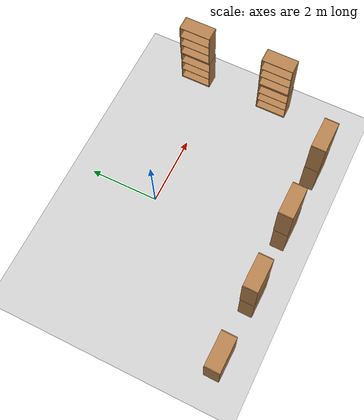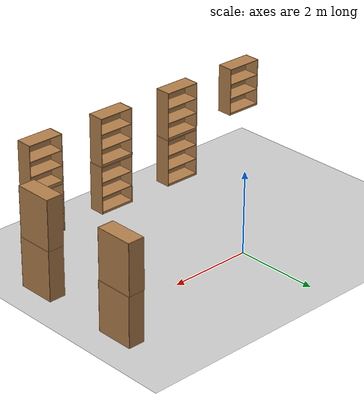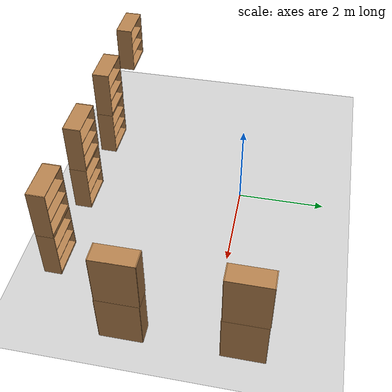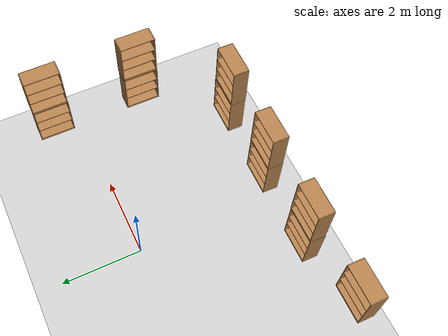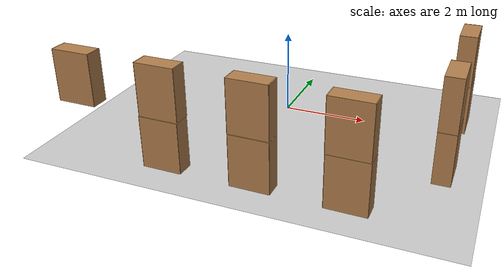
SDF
<sdf version="1.6">
 <world name="default">
  <model name="ground_plane">
   <static>1</static>
   <link name="link">
    <collision name="collision">
     <geometry><plane><normal>0 0 1</normal><size>100 100</size></plane></geometry>
     <surface><friction><ode><mu>100</mu><mu2>50</mu2></ode></friction></surface>
    </collision>
    <visual name="visual">
     <cast_shadows>0</cast_shadows>
     <geometry><plane><normal>0 0 1</normal><size>100 100</size></plane></geometry>
     <material>
      <script><uri>file://media/materials/scripts/gazebo.material</uri><name>Gazebo/Grey</name></script>
     </material>
    </visual>
   </link>
  </model>
  <model name="bookshelf_4_clone_1">
   <static>1</static>
   <link name="link">
    <inertial><mass>1</mass></inertial>
    <collision name="back">
     <pose>0 0.005 0.6 0 -0 0</pose>
     <geometry><box><size>0.9 0.01 1.2</size></box></geometry>
    </collision>
    <visual name="visual1">
     <pose>0 0.005 0.6 0 -0 0</pose>
     <geometry><box><size>0.9 0.01 1.2</size></box></geometry>
     <material>
      <script><uri>file://media/materials/scripts/gazebo.material</uri><name>Gazebo/Wood</name></script>
     </material>
    </visual>
    <collision name="left_side">
     <pose>0.45 -0.195 0.6 0 -0 0</pose>
     <geometry><box><size>0.02 0.4 1.2</size></box></geometry>
    </collision>
    <visual name="visual2">
     <pose>0.45 -0.195 0.6 0 -0 0</pose>
     <geometry><box><size>0.02 0.4 1.2</size></box></geometry>
     <material>
      <script><uri>file://media/materials/scripts/gazebo.material</uri><name>Gazebo/Wood</name></script>
     </material>
    </visual>
    <collision name="right_side">
     <pose>-0.45 -0.195 0.6 0 -0 0</pose>
     <geometry><box><size>0.02 0.4 1.2</size></box></geometry>
    </collision>
    <visual name="visual3">
     <pose>-0.45 -0.195 0.6 0 -0 0</pose>
     <geometry><box><size>0.02 0.4 1.2</size></box></geometry>
     <material>
      <script><uri>file://media/materials/scripts/gazebo.material</uri><name>Gazebo/Wood</name></script>
     </material>
    </visual>
    <collision name="bottom">
     <pose>0 -0.195 0.03 0 -0 0</pose>
     <geometry><box><size>0.88 0.4 0.06</size></box></geometry>
    </collision>
    <visual name="visual4">
     <pose>0 -0.195 0.03 0 -0 0</pose>
     <geometry><box><size>0.88 0.4 0.06</size></box></geometry>
     <material>
      <script><uri>file://media/materials/scripts/gazebo.material</uri><name>Gazebo/Wood</name></script>
     </material>
    </visual>
    <collision name="top">
     <pose>0 -0.195 1.19 0 -0 0</pose>
     <geometry><box><size>0.88 0.4 0.02</size></box></geometry>
    </collision>
    <visual name="visual5">
     <pose>0 -0.195 1.19 0 -0 0</pose>
     <geometry><box><size>0.88 0.4 0.02</size></box></geometry>
     <material>
      <script><uri>file://media/materials/scripts/gazebo.material</uri><name>Gazebo/Wood</name></script>
     </material>
    </visual>
    <collision name="low_shelf">
     <pose>0 -0.195 0.43 0 -0 0</pose>
     <geometry><box><size>0.88 0.4 0.02</size></box></geometry>
    </collision>
    <visual name="visual6">
     <pose>0 -0.195 0.43 0 -0 0</pose>
     <geometry><box><size>0.88 0.4 0.02</size></box></geometry>
     <material>
      <script><uri>file://media/materials/scripts/gazebo.material</uri><name>Gazebo/Wood</name></script>
     </material>
    </visual>
    <collision name="high_shelf">
     <pose>0 -0.195 0.8 0 -0 0</pose>
     <geometry><box><size>0.88 0.4 0.02</size></box></geometry>
    </collision>
    <visual name="visual7">
     <pose>0 -0.195 0.8 0 -0 0</pose>
     <geometry><box><size>0.88 0.4 0.02</size></box></geometry>
     <material>
      <script><uri>file://media/materials/scripts/gazebo.material</uri><name>Gazebo/Wood</name></script>
     </material>
    </visual>
   </link>
   <pose>4.39312 0.69592 0 0 0 -1.5727</pose>
  </model>
  <model name="bookshelf_4_clone_1_clone_clone_0">
   <static>1</static>
   <link name="link">
    <inertial><mass>1</mass></inertial>
    <collision name="back">
     <pose>0 0.005 0.6 0 -0 0</pose>
     <geometry><box><size>0.9 0.01 1.2</size></box></geometry>
    </collision>
    <visual name="visual1">
     <pose>0 0.005 0.6 0 -0 0</pose>
     <geometry><box><size>0.9 0.01 1.2</size></box></geometry>
     <material>
      <script><uri>file://media/materials/scripts/gazebo.material</uri><name>Gazebo/Wood</name></script>
     </material>
    </visual>
    <collision name="left_side">
     <pose>0.45 -0.195 0.6 0 -0 0</pose>
     <geometry><box><size>0.02 0.4 1.2</size></box></geometry>
    </collision>
    <visual name="visual2">
     <pose>0.45 -0.195 0.6 0 -0 0</pose>
     <geometry><box><size>0.02 0.4 1.2</size></box></geometry>
     <material>
      <script><uri>file://media/materials/scripts/gazebo.material</uri><name>Gazebo/Wood</name></script>
     </material>
    </visual>
    <collision name="right_side">
     <pose>-0.45 -0.195 0.6 0 -0 0</pose>
     <geometry><box><size>0.02 0.4 1.2</size></box></geometry>
    </collision>
    <visual name="visual3">
     <pose>-0.45 -0.195 0.6 0 -0 0</pose>
     <geometry><box><size>0.02 0.4 1.2</size></box></geometry>
     <material>
      <script><uri>file://media/materials/scripts/gazebo.material</uri><name>Gazebo/Wood</name></script>
     </material>
    </visual>
    <collision name="bottom">
     <pose>0 -0.195 0.03 0 -0 0</pose>
     <geometry><box><size>0.88 0.4 0.06</size></box></geometry>
    </collision>
    <visual name="visual4">
     <pose>0 -0.195 0.03 0 -0 0</pose>
     <geometry><box><size>0.88 0.4 0.06</size></box></geometry>
     <material>
      <script><uri>file://media/materials/scripts/gazebo.material</uri><name>Gazebo/Wood</name></script>
     </material>
    </visual>
    <collision name="top">
     <pose>0 -0.195 1.19 0 -0 0</pose>
     <geometry><box><size>0.88 0.4 0.02</size></box></geometry>
    </collision>
    <visual name="visual5">
     <pose>0 -0.195 1.19 0 -0 0</pose>
     <geometry><box><size>0.88 0.4 0.02</size></box></geometry>
     <material>
      <script><uri>file://media/materials/scripts/gazebo.material</uri><name>Gazebo/Wood</name></script>
     </material>
    </visual>
    <collision name="low_shelf">
     <pose>0 -0.195 0.43 0 -0 0</pose>
     <geometry><box><size>0.88 0.4 0.02</size></box></geometry>
    </collision>
    <visual name="visual6">
     <pose>0 -0.195 0.43 0 -0 0</pose>
     <geometry><box><size>0.88 0.4 0.02</size></box></geometry>
     <material>
      <script><uri>file://media/materials/scripts/gazebo.material</uri><name>Gazebo/Wood</name></script>
     </material>
    </visual>
    <collision name="high_shelf">
     <pose>0 -0.195 0.8 0 -0 0</pose>
     <geometry><box><size>0.88 0.4 0.02</size></box></geometry>
    </collision>
    <visual name="visual7">
     <pose>0 -0.195 0.8 0 -0 0</pose>
     <geometry><box><size>0.88 0.4 0.02</size></box></geometry>
     <material>
      <script><uri>file://media/materials/scripts/gazebo.material</uri><name>Gazebo/Wood</name></script>
     </material>
    </visual>
   </link>
   <pose>4.38615 0.705306 1.20741 0 0 -1.5727</pose>
  </model>
  <model name="bookshelf_5">
   <static>1</static>
   <link name="link">
    <inertial><mass>1</mass></inertial>
    <collision name="back">
     <pose>0 0.005 0.6 0 -0 0</pose>
     <geometry><box><size>0.9 0.01 1.2</size></box></geometry>
    </collision>
    <visual name="visual1">
     <pose>0 0.005 0.6 0 -0 0</pose>
     <geometry><box><size>0.9 0.01 1.2</size></box></geometry>
     <material>
      <script><uri>file://media/materials/scripts/gazebo.material</uri><name>Gazebo/Wood</name></script>
     </material>
    </visual>
    <collision name="left_side">
     <pose>0.45 -0.195 0.6 0 -0 0</pose>
     <geometry><box><size>0.02 0.4 1.2</size></box></geometry>
    </collision>
    <visual name="visual2">
     <pose>0.45 -0.195 0.6 0 -0 0</pose>
     <geometry><box><size>0.02 0.4 1.2</size></box></geometry>
     <material>
      <script><uri>file://media/materials/scripts/gazebo.material</uri><name>Gazebo/Wood</name></script>
     </material>
    </visual>
    <collision name="right_side">
     <pose>-0.45 -0.195 0.6 0 -0 0</pose>
     <geometry><box><size>0.02 0.4 1.2</size></box></geometry>
    </collision>
    <visual name="visual3">
     <pose>-0.45 -0.195 0.6 0 -0 0</pose>
     <geometry><box><size>0.02 0.4 1.2</size></box></geometry>
     <material>
      <script><uri>file://media/materials/scripts/gazebo.material</uri><name>Gazebo/Wood</name></script>
     </material>
    </visual>
    <collision name="bottom">
     <pose>0 -0.195 0.03 0 -0 0</pose>
     <geometry><box><size>0.88 0.4 0.06</size></box></geometry>
    </collision>
    <visual name="visual4">
     <pose>0 -0.195 0.03 0 -0 0</pose>
     <geometry><box><size>0.88 0.4 0.06</size></box></geometry>
     <material>
      <script><uri>file://media/materials/scripts/gazebo.material</uri><name>Gazebo/Wood</name></script>
     </material>
    </visual>
    <collision name="top">
     <pose>0 -0.195 1.19 0 -0 0</pose>
     <geometry><box><size>0.88 0.4 0.02</size></box></geometry>
    </collision>
    <visual name="visual5">
     <pose>0 -0.195 1.19 0 -0 0</pose>
     <geometry><box><size>0.88 0.4 0.02</size></box></geometry>
     <material>
      <script><uri>file://media/materials/scripts/gazebo.material</uri><name>Gazebo/Wood</name></script>
     </material>
    </visual>
    <collision name="low_shelf">
     <pose>0 -0.195 0.43 0 -0 0</pose>
     <geometry><box><size>0.88 0.4 0.02</size></box></geometry>
    </collision>
    <visual name="visual6">
     <pose>0 -0.195 0.43 0 -0 0</pose>
     <geometry><box><size>0.88 0.4 0.02</size></box></geometry>
     <material>
      <script><uri>file://media/materials/scripts/gazebo.material</uri><name>Gazebo/Wood</name></script>
     </material>
    </visual>
    <collision name="high_shelf">
     <pose>0 -0.195 0.8 0 -0 0</pose>
     <geometry><box><size>0.88 0.4 0.02</size></box></geometry>
    </collision>
    <visual name="visual7">
     <pose>0 -0.195 0.8 0 -0 0</pose>
     <geometry><box><size>0.88 0.4 0.02</size></box></geometry>
     <material>
      <script><uri>file://media/materials/scripts/gazebo.material</uri><name>Gazebo/Wood</name></script>
     </material>
    </visual>
   </link>
   <pose>2.65151 -3.85953 0 0 -0 3.12955</pose>
  </model>
  <model name="bookshelf_5_clone_0">
   <static>1</static>
   <link name="link">
    <inertial><mass>1</mass></inertial>
    <collision name="back">
     <pose>0 0.005 0.6 0 -0 0</pose>
     <geometry><box><size>0.9 0.01 1.2</size></box></geometry>
    </collision>
    <visual name="visual1">
     <pose>0 0.005 0.6 0 -0 0</pose>
     <geometry><box><size>0.9 0.01 1.2</size></box></geometry>
     <material>
      <script><uri>file://media/materials/scripts/gazebo.material</uri><name>Gazebo/Wood</name></script>
     </material>
    </visual>
    <collision name="left_side">
     <pose>0.45 -0.195 0.6 0 -0 0</pose>
     <geometry><box><size>0.02 0.4 1.2</size></box></geometry>
    </collision>
    <visual name="visual2">
     <pose>0.45 -0.195 0.6 0 -0 0</pose>
     <geometry><box><size>0.02 0.4 1.2</size></box></geometry>
     <material>
      <script><uri>file://media/materials/scripts/gazebo.material</uri><name>Gazebo/Wood</name></script>
     </material>
    </visual>
    <collision name="right_side">
     <pose>-0.45 -0.195 0.6 0 -0 0</pose>
     <geometry><box><size>0.02 0.4 1.2</size></box></geometry>
    </collision>
    <visual name="visual3">
     <pose>-0.45 -0.195 0.6 0 -0 0</pose>
     <geometry><box><size>0.02 0.4 1.2</size></box></geometry>
     <material>
      <script><uri>file://media/materials/scripts/gazebo.material</uri><name>Gazebo/Wood</name></script>
     </material>
    </visual>
    <collision name="bottom">
     <pose>0 -0.195 0.03 0 -0 0</pose>
     <geometry><box><size>0.88 0.4 0.06</size></box></geometry>
    </collision>
    <visual name="visual4">
     <pose>0 -0.195 0.03 0 -0 0</pose>
     <geometry><box><size>0.88 0.4 0.06</size></box></geometry>
     <material>
      <script><uri>file://media/materials/scripts/gazebo.material</uri><name>Gazebo/Wood</name></script>
     </material>
    </visual>
    <collision name="top">
     <pose>0 -0.195 1.19 0 -0 0</pose>
     <geometry><box><size>0.88 0.4 0.02</size></box></geometry>
    </collision>
    <visual name="visual5">
     <pose>0 -0.195 1.19 0 -0 0</pose>
     <geometry><box><size>0.88 0.4 0.02</size></box></geometry>
     <material>
      <script><uri>file://media/materials/scripts/gazebo.material</uri><name>Gazebo/Wood</name></script>
     </material>
    </visual>
    <collision name="low_shelf">
     <pose>0 -0.195 0.43 0 -0 0</pose>
     <geometry><box><size>0.88 0.4 0.02</size></box></geometry>
    </collision>
    <visual name="visual6">
     <pose>0 -0.195 0.43 0 -0 0</pose>
     <geometry><box><size>0.88 0.4 0.02</size></box></geometry>
     <material>
      <script><uri>file://media/materials/scripts/gazebo.material</uri><name>Gazebo/Wood</name></script>
     </material>
    </visual>
    <collision name="high_shelf">
     <pose>0 -0.195 0.8 0 -0 0</pose>
     <geometry><box><size>0.88 0.4 0.02</size></box></geometry>
    </collision>
    <visual name="visual7">
     <pose>0 -0.195 0.8 0 -0 0</pose>
     <geometry><box><size>0.88 0.4 0.02</size></box></geometry>
     <material>
      <script><uri>file://media/materials/scripts/gazebo.material</uri><name>Gazebo/Wood</name></script>
     </material>
    </visual>
   </link>
   <pose>0.624398 -3.83719 0 0 -0 3.12955</pose>
  </model>
  <model name="bookshelf_5_clone_2">
   <static>1</static>
   <link name="link">
    <inertial><mass>1</mass></inertial>
    <collision name="back">
     <pose>0 0.005 0.6 0 -0 0</pose>
     <geometry><box><size>0.9 0.01 1.2</size></box></geometry>
    </collision>
    <visual name="visual1">
     <pose>0 0.005 0.6 0 -0 0</pose>
     <geometry><box><size>0.9 0.01 1.2</size></box></geometry>
     <material>
      <script><uri>file://media/materials/scripts/gazebo.material</uri><name>Gazebo/Wood</name></script>
     </material>
    </visual>
    <collision name="left_side">
     <pose>0.45 -0.195 0.6 0 -0 0</pose>
     <geometry><box><size>0.02 0.4 1.2</size></box></geometry>
    </collision>
    <visual name="visual2">
     <pose>0.45 -0.195 0.6 0 -0 0</pose>
     <geometry><box><size>0.02 0.4 1.2</size></box></geometry>
     <material>
      <script><uri>file://media/materials/scripts/gazebo.material</uri><name>Gazebo/Wood</name></script>
     </material>
    </visual>
    <collision name="right_side">
     <pose>-0.45 -0.195 0.6 0 -0 0</pose>
     <geometry><box><size>0.02 0.4 1.2</size></box></geometry>
    </collision>
    <visual name="visual3">
     <pose>-0.45 -0.195 0.6 0 -0 0</pose>
     <geometry><box><size>0.02 0.4 1.2</size></box></geometry>
     <material>
      <script><uri>file://media/materials/scripts/gazebo.material</uri><name>Gazebo/Wood</name></script>
     </material>
    </visual>
    <collision name="bottom">
     <pose>0 -0.195 0.03 0 -0 0</pose>
     <geometry><box><size>0.88 0.4 0.06</size></box></geometry>
    </collision>
    <visual name="visual4">
     <pose>0 -0.195 0.03 0 -0 0</pose>
     <geometry><box><size>0.88 0.4 0.06</size></box></geometry>
     <material>
      <script><uri>file://media/materials/scripts/gazebo.material</uri><name>Gazebo/Wood</name></script>
     </material>
    </visual>
    <collision name="top">
     <pose>0 -0.195 1.19 0 -0 0</pose>
     <geometry><box><size>0.88 0.4 0.02</size></box></geometry>
    </collision>
    <visual name="visual5">
     <pose>0 -0.195 1.19 0 -0 0</pose>
     <geometry><box><size>0.88 0.4 0.02</size></box></geometry>
     <material>
      <script><uri>file://media/materials/scripts/gazebo.material</uri><name>Gazebo/Wood</name></script>
     </material>
    </visual>
    <collision name="low_shelf">
     <pose>0 -0.195 0.43 0 -0 0</pose>
     <geometry><box><size>0.88 0.4 0.02</size></box></geometry>
    </collision>
    <visual name="visual6">
     <pose>0 -0.195 0.43 0 -0 0</pose>
     <geometry><box><size>0.88 0.4 0.02</size></box></geometry>
     <material>
      <script><uri>file://media/materials/scripts/gazebo.material</uri><name>Gazebo/Wood</name></script>
     </material>
    </visual>
    <collision name="high_shelf">
     <pose>0 -0.195 0.8 0 -0 0</pose>
     <geometry><box><size>0.88 0.4 0.02</size></box></geometry>
    </collision>
    <visual name="visual7">
     <pose>0 -0.195 0.8 0 -0 0</pose>
     <geometry><box><size>0.88 0.4 0.02</size></box></geometry>
     <material>
      <script><uri>file://media/materials/scripts/gazebo.material</uri><name>Gazebo/Wood</name></script>
     </material>
    </visual>
   </link>
   <pose>-1.42311 -3.81825 0 0 -0 3.12955</pose>
  </model>
  <model name="bookshelf_5_clone">
   <static>1</static>
   <link name="link">
    <inertial><mass>1</mass></inertial>
    <collision name="back">
     <pose>0 0.005 0.6 0 -0 0</pose>
     <geometry><box><size>0.9 0.01 1.2</size></box></geometry>
    </collision>
    <visual name="visual1">
     <pose>0 0.005 0.6 0 -0 0</pose>
     <geometry><box><size>0.9 0.01 1.2</size></box></geometry>
     <material>
      <script><uri>file://media/materials/scripts/gazebo.material</uri><name>Gazebo/Wood</name></script>
     </material>
    </visual>
    <collision name="left_side">
     <pose>0.45 -0.195 0.6 0 -0 0</pose>
     <geometry><box><size>0.02 0.4 1.2</size></box></geometry>
    </collision>
    <visual name="visual2">
     <pose>0.45 -0.195 0.6 0 -0 0</pose>
     <geometry><box><size>0.02 0.4 1.2</size></box></geometry>
     <material>
      <script><uri>file://media/materials/scripts/gazebo.material</uri><name>Gazebo/Wood</name></script>
     </material>
    </visual>
    <collision name="right_side">
     <pose>-0.45 -0.195 0.6 0 -0 0</pose>
     <geometry><box><size>0.02 0.4 1.2</size></box></geometry>
    </collision>
    <visual name="visual3">
     <pose>-0.45 -0.195 0.6 0 -0 0</pose>
     <geometry><box><size>0.02 0.4 1.2</size></box></geometry>
     <material>
      <script><uri>file://media/materials/scripts/gazebo.material</uri><name>Gazebo/Wood</name></script>
     </material>
    </visual>
    <collision name="bottom">
     <pose>0 -0.195 0.03 0 -0 0</pose>
     <geometry><box><size>0.88 0.4 0.06</size></box></geometry>
    </collision>
    <visual name="visual4">
     <pose>0 -0.195 0.03 0 -0 0</pose>
     <geometry><box><size>0.88 0.4 0.06</size></box></geometry>
     <material>
      <script><uri>file://media/materials/scripts/gazebo.material</uri><name>Gazebo/Wood</name></script>
     </material>
    </visual>
    <collision name="top">
     <pose>0 -0.195 1.19 0 -0 0</pose>
     <geometry><box><size>0.88 0.4 0.02</size></box></geometry>
    </collision>
    <visual name="visual5">
     <pose>0 -0.195 1.19 0 -0 0</pose>
     <geometry><box><size>0.88 0.4 0.02</size></box></geometry>
     <material>
      <script><uri>file://media/materials/scripts/gazebo.material</uri><name>Gazebo/Wood</name></script>
     </material>
    </visual>
    <collision name="low_shelf">
     <pose>0 -0.195 0.43 0 -0 0</pose>
     <geometry><box><size>0.88 0.4 0.02</size></box></geometry>
    </collision>
    <visual name="visual6">
     <pose>0 -0.195 0.43 0 -0 0</pose>
     <geometry><box><size>0.88 0.4 0.02</size></box></geometry>
     <material>
      <script><uri>file://media/materials/scripts/gazebo.material</uri><name>Gazebo/Wood</name></script>
     </material>
    </visual>
    <collision name="high_shelf">
     <pose>0 -0.195 0.8 0 -0 0</pose>
     <geometry><box><size>0.88 0.4 0.02</size></box></geometry>
    </collision>
    <visual name="visual7">
     <pose>0 -0.195 0.8 0 -0 0</pose>
     <geometry><box><size>0.88 0.4 0.02</size></box></geometry>
     <material>
      <script><uri>file://media/materials/scripts/gazebo.material</uri><name>Gazebo/Wood</name></script>
     </material>
    </visual>
   </link>
   <pose>2.64795 -3.86432 1.21139 0 -0 3.12955</pose>
  </model>
  <model name="bookshelf_5_clone_clone">
   <static>1</static>
   <link name="link">
    <inertial><mass>1</mass></inertial>
    <collision name="back">
     <pose>0 0.005 0.6 0 -0 0</pose>
     <geometry><box><size>0.9 0.01 1.2</size></box></geometry>
    </collision>
    <visual name="visual1">
     <pose>0 0.005 0.6 0 -0 0</pose>
     <geometry><box><size>0.9 0.01 1.2</size></box></geometry>
     <material>
      <script><uri>file://media/materials/scripts/gazebo.material</uri><name>Gazebo/Wood</name></script>
     </material>
    </visual>
    <collision name="left_side">
     <pose>0.45 -0.195 0.6 0 -0 0</pose>
     <geometry><box><size>0.02 0.4 1.2</size></box></geometry>
    </collision>
    <visual name="visual2">
     <pose>0.45 -0.195 0.6 0 -0 0</pose>
     <geometry><box><size>0.02 0.4 1.2</size></box></geometry>
     <material>
      <script><uri>file://media/materials/scripts/gazebo.material</uri><name>Gazebo/Wood</name></script>
     </material>
    </visual>
    <collision name="right_side">
     <pose>-0.45 -0.195 0.6 0 -0 0</pose>
     <geometry><box><size>0.02 0.4 1.2</size></box></geometry>
    </collision>
    <visual name="visual3">
     <pose>-0.45 -0.195 0.6 0 -0 0</pose>
     <geometry><box><size>0.02 0.4 1.2</size></box></geometry>
     <material>
      <script><uri>file://media/materials/scripts/gazebo.material</uri><name>Gazebo/Wood</name></script>
     </material>
    </visual>
    <collision name="bottom">
     <pose>0 -0.195 0.03 0 -0 0</pose>
     <geometry><box><size>0.88 0.4 0.06</size></box></geometry>
    </collision>
    <visual name="visual4">
     <pose>0 -0.195 0.03 0 -0 0</pose>
     <geometry><box><size>0.88 0.4 0.06</size></box></geometry>
     <material>
      <script><uri>file://media/materials/scripts/gazebo.material</uri><name>Gazebo/Wood</name></script>
     </material>
    </visual>
    <collision name="top">
     <pose>0 -0.195 1.19 0 -0 0</pose>
     <geometry><box><size>0.88 0.4 0.02</size></box></geometry>
    </collision>
    <visual name="visual5">
     <pose>0 -0.195 1.19 0 -0 0</pose>
     <geometry><box><size>0.88 0.4 0.02</size></box></geometry>
     <material>
      <script><uri>file://media/materials/scripts/gazebo.material</uri><name>Gazebo/Wood</name></script>
     </material>
    </visual>
    <collision name="low_shelf">
     <pose>0 -0.195 0.43 0 -0 0</pose>
     <geometry><box><size>0.88 0.4 0.02</size></box></geometry>
    </collision>
    <visual name="visual6">
     <pose>0 -0.195 0.43 0 -0 0</pose>
     <geometry><box><size>0.88 0.4 0.02</size></box></geometry>
     <material>
      <script><uri>file://media/materials/scripts/gazebo.material</uri><name>Gazebo/Wood</name></script>
     </material>
    </visual>
    <collision name="high_shelf">
     <pose>0 -0.195 0.8 0 -0 0</pose>
     <geometry><box><size>0.88 0.4 0.02</size></box></geometry>
    </collision>
    <visual name="visual7">
     <pose>0 -0.195 0.8 0 -0 0</pose>
     <geometry><box><size>0.88 0.4 0.02</size></box></geometry>
     <material>
      <script><uri>file://media/materials/scripts/gazebo.material</uri><name>Gazebo/Wood</name></script>
     </material>
    </visual>
   </link>
   <pose>0.620317 -3.82873 1.21139 0 -0 3.12955</pose>
  </model>
  <model name="bookshelf_5_clone_clone_0">
   <static>1</static>
   <link name="link">
    <inertial><mass>1</mass></inertial>
    <collision name="back">
     <pose>0 0.005 0.6 0 -0 0</pose>
     <geometry><box><size>0.9 0.01 1.2</size></box></geometry>
    </collision>
    <visual name="visual1">
     <pose>0 0.005 0.6 0 -0 0</pose>
     <geometry><box><size>0.9 0.01 1.2</size></box></geometry>
     <material>
      <script><uri>file://media/materials/scripts/gazebo.material</uri><name>Gazebo/Wood</name></script>
     </material>
    </visual>
    <collision name="left_side">
     <pose>0.45 -0.195 0.6 0 -0 0</pose>
     <geometry><box><size>0.02 0.4 1.2</size></box></geometry>
    </collision>
    <visual name="visual2">
     <pose>0.45 -0.195 0.6 0 -0 0</pose>
     <geometry><box><size>0.02 0.4 1.2</size></box></geometry>
     <material>
      <script><uri>file://media/materials/scripts/gazebo.material</uri><name>Gazebo/Wood</name></script>
     </material>
    </visual>
    <collision name="right_side">
     <pose>-0.45 -0.195 0.6 0 -0 0</pose>
     <geometry><box><size>0.02 0.4 1.2</size></box></geometry>
    </collision>
    <visual name="visual3">
     <pose>-0.45 -0.195 0.6 0 -0 0</pose>
     <geometry><box><size>0.02 0.4 1.2</size></box></geometry>
     <material>
      <script><uri>file://media/materials/scripts/gazebo.material</uri><name>Gazebo/Wood</name></script>
     </material>
    </visual>
    <collision name="bottom">
     <pose>0 -0.195 0.03 0 -0 0</pose>
     <geometry><box><size>0.88 0.4 0.06</size></box></geometry>
    </collision>
    <visual name="visual4">
     <pose>0 -0.195 0.03 0 -0 0</pose>
     <geometry><box><size>0.88 0.4 0.06</size></box></geometry>
     <material>
      <script><uri>file://media/materials/scripts/gazebo.material</uri><name>Gazebo/Wood</name></script>
     </material>
    </visual>
    <collision name="top">
     <pose>0 -0.195 1.19 0 -0 0</pose>
     <geometry><box><size>0.88 0.4 0.02</size></box></geometry>
    </collision>
    <visual name="visual5">
     <pose>0 -0.195 1.19 0 -0 0</pose>
     <geometry><box><size>0.88 0.4 0.02</size></box></geometry>
     <material>
      <script><uri>file://media/materials/scripts/gazebo.material</uri><name>Gazebo/Wood</name></script>
     </material>
    </visual>
    <collision name="low_shelf">
     <pose>0 -0.195 0.43 0 -0 0</pose>
     <geometry><box><size>0.88 0.4 0.02</size></box></geometry>
    </collision>
    <visual name="visual6">
     <pose>0 -0.195 0.43 0 -0 0</pose>
     <geometry><box><size>0.88 0.4 0.02</size></box></geometry>
     <material>
      <script><uri>file://media/materials/scripts/gazebo.material</uri><name>Gazebo/Wood</name></script>
     </material>
    </visual>
    <collision name="high_shelf">
     <pose>0 -0.195 0.8 0 -0 0</pose>
     <geometry><box><size>0.88 0.4 0.02</size></box></geometry>
    </collision>
    <visual name="visual7">
     <pose>0 -0.195 0.8 0 -0 0</pose>
     <geometry><box><size>0.88 0.4 0.02</size></box></geometry>
     <material>
      <script><uri>file://media/materials/scripts/gazebo.material</uri><name>Gazebo/Wood</name></script>
     </material>
    </visual>
   </link>
   <pose>-1.41694 -3.81004 1.21139 0 -0 3.12955</pose>
  </model>
  <model name="bookshelf_5_clone_clone_1">
   <static>1</static>
   <link name="link">
    <inertial><mass>1</mass></inertial>
    <collision name="back">
     <pose>0 0.005 0.6 0 -0 0</pose>
     <geometry><box><size>0.9 0.01 1.2</size></box></geometry>
    </collision>
    <visual name="visual1">
     <pose>0 0.005 0.6 0 -0 0</pose>
     <geometry><box><size>0.9 0.01 1.2</size></box></geometry>
     <material>
      <script><uri>file://media/materials/scripts/gazebo.material</uri><name>Gazebo/Wood</name></script>
     </material>
    </visual>
    <collision name="left_side">
     <pose>0.45 -0.195 0.6 0 -0 0</pose>
     <geometry><box><size>0.02 0.4 1.2</size></box></geometry>
    </collision>
    <visual name="visual2">
     <pose>0.45 -0.195 0.6 0 -0 0</pose>
     <geometry><box><size>0.02 0.4 1.2</size></box></geometry>
     <material>
      <script><uri>file://media/materials/scripts/gazebo.material</uri><name>Gazebo/Wood</name></script>
     </material>
    </visual>
    <collision name="right_side">
     <pose>-0.45 -0.195 0.6 0 -0 0</pose>
     <geometry><box><size>0.02 0.4 1.2</size></box></geometry>
    </collision>
    <visual name="visual3">
     <pose>-0.45 -0.195 0.6 0 -0 0</pose>
     <geometry><box><size>0.02 0.4 1.2</size></box></geometry>
     <material>
      <script><uri>file://media/materials/scripts/gazebo.material</uri><name>Gazebo/Wood</name></script>
     </material>
    </visual>
    <collision name="bottom">
     <pose>0 -0.195 0.03 0 -0 0</pose>
     <geometry><box><size>0.88 0.4 0.06</size></box></geometry>
    </collision>
    <visual name="visual4">
     <pose>0 -0.195 0.03 0 -0 0</pose>
     <geometry><box><size>0.88 0.4 0.06</size></box></geometry>
     <material>
      <script><uri>file://media/materials/scripts/gazebo.material</uri><name>Gazebo/Wood</name></script>
     </material>
    </visual>
    <collision name="top">
     <pose>0 -0.195 1.19 0 -0 0</pose>
     <geometry><box><size>0.88 0.4 0.02</size></box></geometry>
    </collision>
    <visual name="visual5">
     <pose>0 -0.195 1.19 0 -0 0</pose>
     <geometry><box><size>0.88 0.4 0.02</size></box></geometry>
     <material>
      <script><uri>file://media/materials/scripts/gazebo.material</uri><name>Gazebo/Wood</name></script>
     </material>
    </visual>
    <collision name="low_shelf">
     <pose>0 -0.195 0.43 0 -0 0</pose>
     <geometry><box><size>0.88 0.4 0.02</size></box></geometry>
    </collision>
    <visual name="visual6">
     <pose>0 -0.195 0.43 0 -0 0</pose>
     <geometry><box><size>0.88 0.4 0.02</size></box></geometry>
     <material>
      <script><uri>file://media/materials/scripts/gazebo.material</uri><name>Gazebo/Wood</name></script>
     </material>
    </visual>
    <collision name="high_shelf">
     <pose>0 -0.195 0.8 0 -0 0</pose>
     <geometry><box><size>0.88 0.4 0.02</size></box></geometry>
    </collision>
    <visual name="visual7">
     <pose>0 -0.195 0.8 0 -0 0</pose>
     <geometry><box><size>0.88 0.4 0.02</size></box></geometry>
     <material>
      <script><uri>file://media/materials/scripts/gazebo.material</uri><name>Gazebo/Wood</name></script>
     </material>
    </visual>
   </link>
   <pose>-3.44383 -3.79926 1.21139 0 -0 3.12955</pose>
  </model>
  <model name="bookshelf_4_clone_clone">
   <static>1</static>
   <link name="link">
    <inertial><mass>1</mass></inertial>
    <collision name="back">
     <pose>0 0.005 0.6 0 -0 0</pose>
     <geometry><box><size>0.9 0.01 1.2</size></box></geometry>
    </collision>
    <visual name="visual1">
     <pose>0 0.005 0.6 0 -0 0</pose>
     <geometry><box><size>0.9 0.01 1.2</size></box></geometry>
     <material>
      <script><uri>file://media/materials/scripts/gazebo.material</uri><name>Gazebo/Wood</name></script>
     </material>
    </visual>
    <collision name="left_side">
     <pose>0.45 -0.195 0.6 0 -0 0</pose>
     <geometry><box><size>0.02 0.4 1.2</size></box></geometry>
    </collision>
    <visual name="visual2">
     <pose>0.45 -0.195 0.6 0 -0 0</pose>
     <geometry><box><size>0.02 0.4 1.2</size></box></geometry>
     <material>
      <script><uri>file://media/materials/scripts/gazebo.material</uri><name>Gazebo/Wood</name></script>
     </material>
    </visual>
    <collision name="right_side">
     <pose>-0.45 -0.195 0.6 0 -0 0</pose>
     <geometry><box><size>0.02 0.4 1.2</size></box></geometry>
    </collision>
    <visual name="visual3">
     <pose>-0.45 -0.195 0.6 0 -0 0</pose>
     <geometry><box><size>0.02 0.4 1.2</size></box></geometry>
     <material>
      <script><uri>file://media/materials/scripts/gazebo.material</uri><name>Gazebo/Wood</name></script>
     </material>
    </visual>
    <collision name="bottom">
     <pose>0 -0.195 0.03 0 -0 0</pose>
     <geometry><box><size>0.88 0.4 0.06</size></box></geometry>
    </collision>
    <visual name="visual4">
     <pose>0 -0.195 0.03 0 -0 0</pose>
     <geometry><box><size>0.88 0.4 0.06</size></box></geometry>
     <material>
      <script><uri>file://media/materials/scripts/gazebo.material</uri><name>Gazebo/Wood</name></script>
     </material>
    </visual>
    <collision name="top">
     <pose>0 -0.195 1.19 0 -0 0</pose>
     <geometry><box><size>0.88 0.4 0.02</size></box></geometry>
    </collision>
    <visual name="visual5">
     <pose>0 -0.195 1.19 0 -0 0</pose>
     <geometry><box><size>0.88 0.4 0.02</size></box></geometry>
     <material>
      <script><uri>file://media/materials/scripts/gazebo.material</uri><name>Gazebo/Wood</name></script>
     </material>
    </visual>
    <collision name="low_shelf">
     <pose>0 -0.195 0.43 0 -0 0</pose>
     <geometry><box><size>0.88 0.4 0.02</size></box></geometry>
    </collision>
    <visual name="visual6">
     <pose>0 -0.195 0.43 0 -0 0</pose>
     <geometry><box><size>0.88 0.4 0.02</size></box></geometry>
     <material>
      <script><uri>file://media/materials/scripts/gazebo.material</uri><name>Gazebo/Wood</name></script>
     </material>
    </visual>
    <collision name="high_shelf">
     <pose>0 -0.195 0.8 0 -0 0</pose>
     <geometry><box><size>0.88 0.4 0.02</size></box></geometry>
    </collision>
    <visual name="visual7">
     <pose>0 -0.195 0.8 0 -0 0</pose>
     <geometry><box><size>0.88 0.4 0.02</size></box></geometry>
     <material>
      <script><uri>file://media/materials/scripts/gazebo.material</uri><name>Gazebo/Wood</name></script>
     </material>
    </visual>
   </link>
   <pose>4.40573 -1.76165 0 0 0 -1.5727</pose>
  </model>
  <model name="bookshelf_4_clone_1_clone_clone_clone">
   <static>1</static>
   <link name="link">
    <inertial><mass>1</mass></inertial>
    <collision name="back">
     <pose>0 0.005 0.6 0 -0 0</pose>
     <geometry><box><size>0.9 0.01 1.2</size></box></geometry>
    </collision>
    <visual name="visual1">
     <pose>0 0.005 0.6 0 -0 0</pose>
     <geometry><box><size>0.9 0.01 1.2</size></box></geometry>
     <material>
      <script><uri>file://media/materials/scripts/gazebo.material</uri><name>Gazebo/Wood</name></script>
     </material>
    </visual>
    <collision name="left_side">
     <pose>0.45 -0.195 0.6 0 -0 0</pose>
     <geometry><box><size>0.02 0.4 1.2</size></box></geometry>
    </collision>
    <visual name="visual2">
     <pose>0.45 -0.195 0.6 0 -0 0</pose>
     <geometry><box><size>0.02 0.4 1.2</size></box></geometry>
     <material>
      <script><uri>file://media/materials/scripts/gazebo.material</uri><name>Gazebo/Wood</name></script>
     </material>
    </visual>
    <collision name="right_side">
     <pose>-0.45 -0.195 0.6 0 -0 0</pose>
     <geometry><box><size>0.02 0.4 1.2</size></box></geometry>
    </collision>
    <visual name="visual3">
     <pose>-0.45 -0.195 0.6 0 -0 0</pose>
     <geometry><box><size>0.02 0.4 1.2</size></box></geometry>
     <material>
      <script><uri>file://media/materials/scripts/gazebo.material</uri><name>Gazebo/Wood</name></script>
     </material>
    </visual>
    <collision name="bottom">
     <pose>0 -0.195 0.03 0 -0 0</pose>
     <geometry><box><size>0.88 0.4 0.06</size></box></geometry>
    </collision>
    <visual name="visual4">
     <pose>0 -0.195 0.03 0 -0 0</pose>
     <geometry><box><size>0.88 0.4 0.06</size></box></geometry>
     <material>
      <script><uri>file://media/materials/scripts/gazebo.material</uri><name>Gazebo/Wood</name></script>
     </material>
    </visual>
    <collision name="top">
     <pose>0 -0.195 1.19 0 -0 0</pose>
     <geometry><box><size>0.88 0.4 0.02</size></box></geometry>
    </collision>
    <visual name="visual5">
     <pose>0 -0.195 1.19 0 -0 0</pose>
     <geometry><box><size>0.88 0.4 0.02</size></box></geometry>
     <material>
      <script><uri>file://media/materials/scripts/gazebo.material</uri><name>Gazebo/Wood</name></script>
     </material>
    </visual>
    <collision name="low_shelf">
     <pose>0 -0.195 0.43 0 -0 0</pose>
     <geometry><box><size>0.88 0.4 0.02</size></box></geometry>
    </collision>
    <visual name="visual6">
     <pose>0 -0.195 0.43 0 -0 0</pose>
     <geometry><box><size>0.88 0.4 0.02</size></box></geometry>
     <material>
      <script><uri>file://media/materials/scripts/gazebo.material</uri><name>Gazebo/Wood</name></script>
     </material>
    </visual>
    <collision name="high_shelf">
     <pose>0 -0.195 0.8 0 -0 0</pose>
     <geometry><box><size>0.88 0.4 0.02</size></box></geometry>
    </collision>
    <visual name="visual7">
     <pose>0 -0.195 0.8 0 -0 0</pose>
     <geometry><box><size>0.88 0.4 0.02</size></box></geometry>
     <material>
      <script><uri>file://media/materials/scripts/gazebo.material</uri><name>Gazebo/Wood</name></script>
     </material>
    </visual>
   </link>
   <pose>4.40422 -1.75184 1.20741 0 0 -1.5727</pose>
  </model>
 </world>
</sdf>
